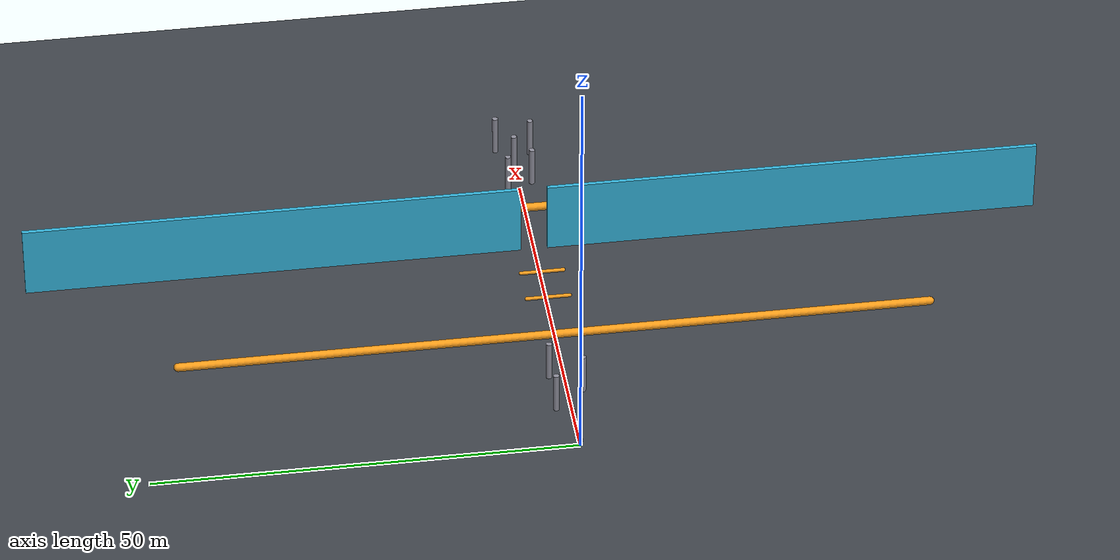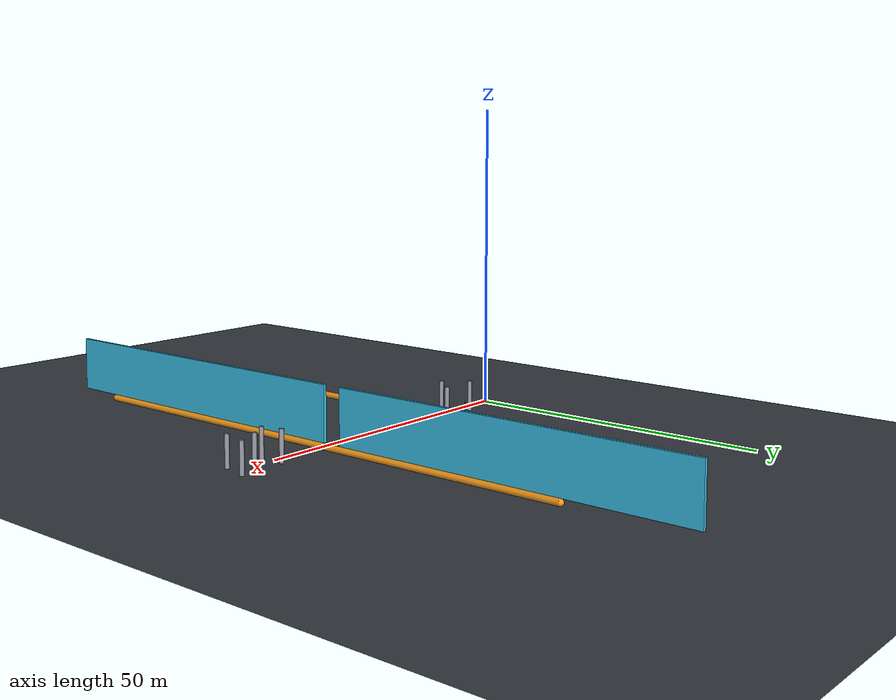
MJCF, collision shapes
<mujoco model="follow_avoid_arena">
  <include file="mujoco_menagerie/skydio_x2/x2.xml"/>

  <statistic extent="20" center="30 0 2"/>

  <option timestep="0.002" density="1.2" viscosity="1.8e-5"/>
  <visual>
    <global fovy="50" offwidth="1400" offheight="900"/>
    <headlight diffuse=".7 .7 .7" ambient=".4 .4 .4"/>
    <map znear="0.0025" zfar="3.0"/>  <!-- fractions of stat.extent, NOT metres -->
  </visual>

  <asset>
    <texture type="skybox" builtin="gradient" rgb1=".5 .65 .85" rgb2=".1 .15 .25" width="512" height="512"/>
    <texture name="grid" type="2d" builtin="checker" rgb1=".22 .24 .26" rgb2=".28 .30 .33" width="512" height="512"/>
    <material name="grid" texture="grid" texrepeat="18 18" reflectance="0"/>
    <material name="pillar" rgba=".55 .55 .60 1"/>
    <material name="rover"  rgba=".95 .15 .10 1"/>
    <material name="mover"  rgba=".95 .60 .10 1"/>
    <material name="gate"   rgba=".20 .70 .85 1"/>
  </asset>

  <worldbody>
    <light pos="0 0 12" dir="0 0 -1" directional="true" diffuse=".6 .6 .6"/>
    <geom name="floor" type="plane" size="90 90 .05" material="grid"/>

    <!-- 1. slalom -->
    <geom name="p0" type="cylinder" material="pillar" size=".35 2.5" pos="  7  1.8 2.5"/>
    <geom name="p1" type="cylinder" material="pillar" size=".35 2.5" pos=" 10 -1.8 2.5"/>
    <geom name="p2" type="cylinder" material="pillar" size=".35 2.5" pos=" 13  1.8 2.5"/>

    <!-- 2. low beam: spans the corridor, must be flown OVER -->
    <geom name="beam0" type="capsule" material="mover" size=".50 45" euler="90 0 0" pos="19 0 1.60"/>

    <!-- 3. turnstiles: arms that sweep across the lane -->
    <body name="arm0" mocap="true" pos="26 0 1.7">
      <geom name="arm0_geom" type="capsule" material="mover" size=".22 2.6" euler="90 0 0"/>
    </body>
    <body name="arm1" mocap="true" pos="31 0 1.7">
      <geom name="arm1_geom" type="capsule" material="mover" size=".22 2.6" euler="90 0 0"/>
    </body>

    <!-- 4. sliding gate: two shutters leaving a gap that moves -->
    <body name="gateL" mocap="true" pos="38 31.6 4.5">
      <geom name="gateL_geom" type="box" material="gate" size=".25 30.0 4.5"/>
    </body>
    <body name="gateR" mocap="true" pos="38 -31.6 4.5">
      <geom name="gateR_geom" type="box" material="gate" size=".25 30.0 4.5"/>
    </body>

    <!-- 5. second low beam, then a dense cluster -->
    <geom name="beam1" type="capsule" material="mover" size=".50 45" euler="90 0 0" pos="44 0 1.60"/>
    <geom name="p3" type="cylinder" material="pillar" size=".35 2.5" pos=" 50  1.5 2.5"/>
    <geom name="p4" type="cylinder" material="pillar" size=".35 2.5" pos=" 51 -1.6 2.5"/>
    <geom name="p5" type="cylinder" material="pillar" size=".35 2.5" pos=" 54  0.2 2.5"/>
    <geom name="p6" type="cylinder" material="pillar" size=".35 2.5" pos=" 57 -2.2 2.5"/>
    <geom name="p7" type="cylinder" material="pillar" size=".35 2.5" pos=" 58  2.0 2.5"/>

    <!-- moving ground target the drone must follow -->
    <body name="rover" mocap="true" pos="6 0 .2">
      <geom name="rover_geom" type="box" material="rover" size=".35 .25 .2"/>
      <geom name="rover_mast" type="box" material="rover" size=".06 .06 .35" pos="0 0 .5"/>
    </body>

  </worldbody>
</mujoco>

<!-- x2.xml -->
<mujoco model="Skydio X2">
  <compiler inertiafromgeom="true" angle="degree" autolimits="true" assetdir="assets"/>

  <option timestep=".005" iterations="50" tolerance="1e-16" solver="Newton" jacobian="dense" cone="pyramidal" density="1.225" viscosity="1.8e-5">
    <flag contact = "enable"/>
  </option>

  <default>
    <default class="x2">
      <geom mass="0"/>
      <motor ctrlrange="0 200"/>
      <mesh scale="0.01 0.01 0.01"/>
      <default class="visual">
        <geom group="2" type="mesh" contype="0" conaffinity="0"/>
      </default>
      <default class="collision">
        <geom group="3" type="box"/>
        <default class="rotor">
          <geom type="ellipsoid" size=".13 .13 .01"/>
        </default>
      </default>
      <site group="5"/>
    </default>
  </default>

  <asset>
    <texture type="2d" file="X2_lowpoly_texture_SpinningProps_1024.png"/>
    <material name="phong3SG" texture="X2_lowpoly_texture_SpinningProps_1024"/>
    <material name="invisible" rgba="0 0 0 0"/>

    <mesh class="x2" file="X2_lowpoly.obj"/>
    <mesh name="BASE" file="stls/Base.STL"/>
    <mesh name="LINK1" file="stls/Link1.STL"/>
    <mesh name="LINK2" file="stls/Link2.STL"/>
    <mesh name="LINK3" file="stls/Link3.STL"/>
    <mesh name="DYNM" file="stls/XH430.STL"/>
  </asset>

  <worldbody>
    <light name="spotlight" mode="targetbodycom" target="x2" pos="0 -1 2"/>
    <body name="x2" pos="0 0 0.7" childclass="x2">
      <freejoint/>
      <camera name="track" pos="-1 0 .5" xyaxes="0 -1 0 1 0 2" mode="trackcom"/>
      <site name="imu" pos="0 0 .02"/>
      <geom material="phong3SG" mesh="X2_lowpoly" class="visual" quat="0 0 1 1"/>
      <geom class="collision" size=".06 .027 .02" pos=".04 0 .02"/>
      <geom class="collision" size=".06 .027 .02" pos=".04 0 .06"/>
      <geom class="collision" size=".05 .027 .02" pos="-.07 0 .065"/>
      <geom class="collision" size=".023 .017 .01" pos="-.137 .008 .065" quat="1 0 0 1"/>
      <geom name="rotor1" class="rotor" pos="-.14 -.18 .05" mass=".25"/>
      <geom name="rotor2" class="rotor" pos="-.14 .18 .05" mass=".25"/>
      <geom name="rotor3" class="rotor" pos=".14 .18 .08" mass=".25"/>
      <geom name="rotor4" class="rotor" pos=".14 -.18 .08" mass=".25"/>
      <geom size=".16 .04 .02" pos="0 0 0.02" type="ellipsoid" mass=".325" class="visual" material="invisible"/>
      <site name="thrust1" pos="-.14 -.18 .05"/>
      <site name="thrust2" pos="-.14 .18 .05"/>
      <site name="thrust3" pos=".14 .18 .08"/>
      <site name="thrust4" pos=".14 -.18 .08"/>
    </body>
  </worldbody>

  <actuator>
    <motor class="x2" name="thrust1" site="thrust1" gear="0 0 1 0 0 -.0201"/>
    <motor class="x2" name="thrust2" site="thrust2" gear="0 0 1 0 0  .0201"/>
    <motor class="x2" name="thrust3" site="thrust3" gear="0 0 1 0 0  .0201"/>
    <motor class="x2" name="thrust4" site="thrust4" gear="0 0 1 0 0 -.0201"/>
  </actuator>

  <sensor>
    <gyro name="body_gyro" site="imu"/>
    <accelerometer name="body_linacc" site="imu"/>
    <framequat name="body_quat" objtype="site" objname="imu"/>
  </sensor>

  <keyframe>
    <key name="hover" qpos="0 0 .3 1 0 0 0" ctrl="3.2495625 3.2495625 3.2495625 3.2495625"/>
  </keyframe>
</mujoco>
